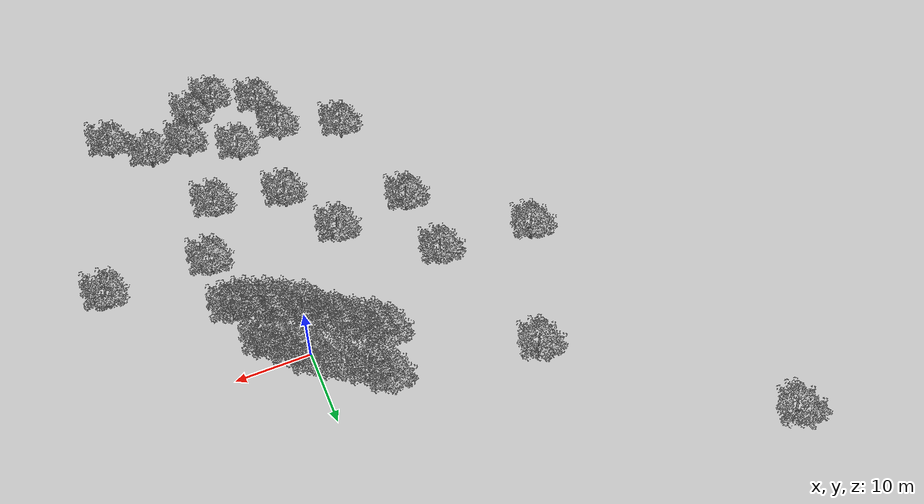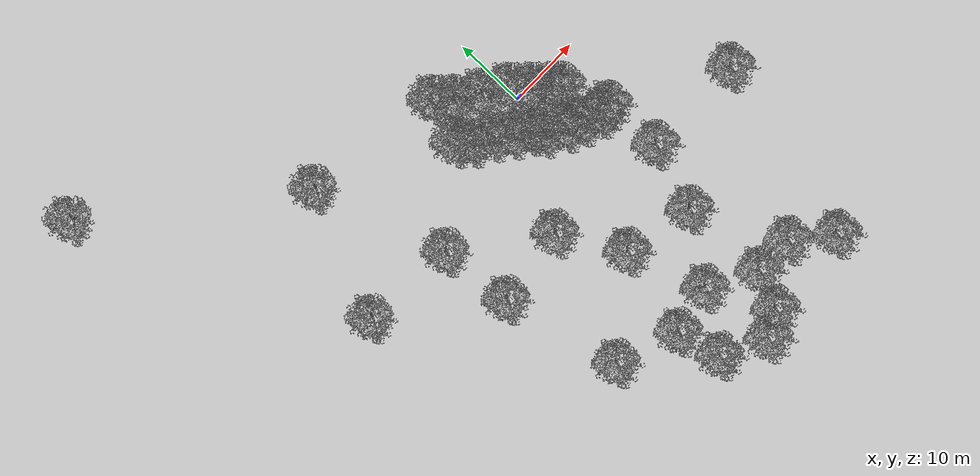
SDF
<gazebo version="1.2">
 <world name="default">
  <plugin name="carina_world_plugin" filename="libcarina_world_plugin.so"/>
  <physics type="bullet"><gravity>0 0 -9.8</gravity><bullet><dt>0.001</dt></bullet></physics>
  <scene>
   <ambient>0.0 0.0 0.0 1.0</ambient>
   <background>0.7 0.7 0.7 1.0</background>
   <sky>
    <time>12</time>
    <sunrise>5</sunrise>
    <sunset>19</sunset>
    <clouds>
     <speed>0.02</speed>
     <direction>0</direction>
     <humidity>0.8</humidity>
     <mean_size>1</mean_size>
     <ambient>0.5 0.5 0.5 1.0</ambient>
    </clouds>
   </sky>
   <shadows>true</shadows>
   <grid>false</grid>
  </scene>
  <light name="sun" type="directional">
   <pose>0.0 0.0 20.0 0.0 0.0 0.0</pose>
   <diffuse>0.85 0.85 0.85 1.0</diffuse>
   <specular>0.15 0.15 0.15 1.0</specular>
   <attenuation>
    <range>1000.0</range>
    <constant>0.9</constant>
    <linear>0.01</linear>
    <quadratic>0.001</quadratic>
   </attenuation>
   <direction>-0.5 0.5 -1.0</direction>
  </light>
  <model name="finihed">
   <pose>-10.000000 2.000000 0.000000 0.000000 -0.000000 0.000000</pose>
   <static>1</static>
   <link name="link">
    <inertial>
     <mass>10.000000</mass>
     <inertia>
      <ixx>0.001000</ixx>
      <ixy>0.000000</ixy>
      <ixz>0.000000</ixz>
      <iyy>0.001000</iyy>
      <iyz>0.000000</iyz>
      <izz>0.001000</izz>
     </inertia>
    </inertial>
    <collision name="collision">
     <geometry><cylinder><radius>0.150000</radius><length>5.000000</length></cylinder></geometry>
    </collision>
    <visual name="visual">
     <geometry>
      <mesh><uri>model://finihed/meshes/finihed.dae</uri><scale>1.000000 1.000000 1.000000</scale></mesh>
     </geometry>
    </visual>
    <velocity_decay><linear>0.000000</linear><angular>0.000000</angular></velocity_decay>
   </link>
  </model>
  <include>
   <name>tree_1</name>
   <uri>model://finihed</uri>
   <pose>-8.457250 0.462320 0.000000 0.000000 -0.000000 0.000000</pose>
  </include>
  <model name="tree_2">
   <include>
    <uri>model://finihed</uri>
    <pose>-6.000000 -1.000000 0.000000 0.000000 -0.000000 0.000000</pose>
   </include>
  </model>
  <model name="tree_3">
   <include>
    <uri>model://finihed</uri>
    <pose>-4.000000 -2.574660 0.000000 0.000000 -0.000000 0.000000</pose>
   </include>
  </model>
  <model name="finihed_3">
   <include>
    <uri>model://finihed</uri>
    <pose>-2.000000 -4.000000 0.000000 0.000000 -0.000000 0.000000</pose>
   </include>
  </model>
  <model name="finihed_4">
   <include>
    <uri>model://finihed</uri>
    <pose>-1.000000 -5.463300 0.000000 0.000000 -0.000000 0.000000</pose>
   </include>
  </model>
  <model name="finihed_5">
   <include>
    <uri>model://finihed</uri>
    <pose>1.487640 -7.000000 0.000000 0.000000 -0.000000 0.000000</pose>
   </include>
  </model>
  <model name="finihed_6">
   <include>
    <uri>model://finihed</uri>
    <pose>-8.000000 8.000000 0.000000 0.000000 -0.000000 0.000000</pose>
   </include>
  </model>
  <model name="finihed_7">
   <include>
    <uri>model://finihed</uri>
    <pose>-6.000000 6.000000 0.000000 0.000000 -0.000000 0.000000</pose>
   </include>
  </model>
  <model name="finihed_8">
   <include>
    <uri>model://finihed</uri>
    <pose>-3.000000 4.000000 0.000000 0.000000 -0.000000 0.000000</pose>
   </include>
  </model>
  <model name="finihed_9">
   <include>
    <uri>model://finihed</uri>
    <pose>0.000000 2.000000 0.000000 0.000000 -0.000000 0.000000</pose>
   </include>
  </model>
  <model name="finihed_10">
   <include>
    <uri>model://finihed</uri>
    <pose>2.000000 0.000000 0.000000 0.000000 -0.000000 0.000000</pose>
   </include>
  </model>
  <model name="finihed_11">
   <include>
    <uri>model://finihed</uri>
    <pose>4.000000 -2.000000 0.000000 0.000000 -0.000000 0.000000</pose>
   </include>
  </model>
  <model name="finihed_12">
   <include>
    <uri>model://finihed</uri>
    <pose>5.000000 -3.000000 0.000000 0.000000 -0.000000 0.000000</pose>
   </include>
  </model>
  <model name="finihed_13">
   <include>
    <uri>model://finihed</uri>
    <pose>3.559530 -8.000000 0.000000 0.000000 -0.000000 0.000000</pose>
   </include>
  </model>
  <model name="finihed_14">
   <include>
    <uri>model://finihed</uri>
    <pose>6.000000 -9.000000 0.000000 0.000000 -0.000000 0.000000</pose>
   </include>
  </model>
  <model name="finihed_15">
   <include>
    <uri>model://finihed</uri>
    <pose>7.459510 -9.000000 0.000000 0.000000 -0.000000 0.000000</pose>
   </include>
  </model>
  <model name="finihed_0">
   <include>
    <uri>model://finihed</uri>
    <pose>-9.406170 -15.582100 0.000000 0.000000 0.000000 0.000000</pose>
   </include>
  </model>
  <model name="finihed_1">
   <include>
    <uri>model://finihed</uri>
    <pose>5.000000 -26.000000 0.000000 0.000000 0.000000 0.000000</pose>
   </include>
  </model>
  <model name="finihed_2">
   <include>
    <uri>model://finihed</uri>
    <pose>-4.563540 -24.000000 0.000000 0.000000 0.000000 0.000000</pose>
   </include>
  </model>
  <model name="finihed_16">
   <include>
    <uri>model://finihed</uri>
    <pose>-52.000000 31.000000 0.000000 0.000000 0.000000 0.000000</pose>
   </include>
  </model>
  <model name="finihed_17">
   <include>
    <uri>model://finihed</uri>
    <pose>-34.000000 -6.000000 0.000000 0.000000 0.000000 0.000000</pose>
   </include>
  </model>
  <model name="finihed_18">
   <include>
    <uri>model://finihed</uri>
    <pose>22.000000 -17.000000 0.000000 0.000000 0.000000 0.000000</pose>
   </include>
  </model>
  <model name="finihed_19">
   <include>
    <uri>model://finihed</uri>
    <pose>8.000000 -17.000000 0.000000 0.000000 0.000000 0.000000</pose>
   </include>
  </model>
  <model name="finihed_20">
   <include>
    <uri>model://finihed</uri>
    <pose>-27.000000 11.000000 0.000000 0.000000 0.000000 0.000000</pose>
   </include>
  </model>
  <model name="finihed_21">
   <include>
    <uri>model://finihed</uri>
    <pose>-21.000000 -7.000000 0.000000 0.000000 0.000000 0.000000</pose>
   </include>
  </model>
  <model name="finihed_22">
   <include>
    <uri>model://finihed</uri>
    <pose>-20.000000 -17.000000 0.000000 0.000000 0.000000 0.000000</pose>
   </include>
  </model>
  <model name="finihed_23">
   <include>
    <uri>model://finihed</uri>
    <pose>-16.000000 -33.000000 0.000000 0.000000 0.000000 0.000000</pose>
   </include>
  </model>
  <model name="finihed_24">
   <include>
    <uri>model://finihed</uri>
    <pose>0.000000 -45.000000 0.000000 0.000000 0.000000 0.000000</pose>
   </include>
  </model>
  <model name="finihed_25">
   <include>
    <uri>model://finihed</uri>
    <pose>3.431760 -43.000000 0.000000 0.000000 0.000000 0.000000</pose>
   </include>
  </model>
  <model name="finihed_26">
   <include>
    <uri>model://finihed</uri>
    <pose>-6.000000 -42.000000 0.000000 0.000000 0.000000 0.000000</pose>
   </include>
  </model>
  <model name="finihed_27">
   <include>
    <uri>model://finihed</uri>
    <pose>-7.491620 -36.000000 0.000000 0.000000 0.000000 0.000000</pose>
   </include>
  </model>
  <model name="finihed_28">
   <include>
    <uri>model://finihed</uri>
    <pose>-1.000000 -34.532300 0.000000 0.000000 0.000000 0.000000</pose>
   </include>
  </model>
  <model name="finihed_29">
   <include>
    <uri>model://finihed</uri>
    <pose>5.553360 -38.000000 0.000000 0.000000 0.000000 0.000000</pose>
   </include>
  </model>
  <model name="finihed_30">
   <include>
    <uri>model://finihed</uri>
    <pose>11.000000 -38.000000 0.000000 0.000000 0.000000 0.000000</pose>
   </include>
  </model>
  <model name="finihed_31">
   <include>
    <uri>model://finihed</uri>
    <pose>16.000000 -42.000000 0.000000 0.000000 0.000000 0.000000</pose>
   </include>
  </model>
 </world>
</gazebo>

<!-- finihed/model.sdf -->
<sdf version="1.4">
	<model name="finihed">
		<pose>0 0 0 0 0 0</pose>
		<static>true</static>
		<allow_auto_disable>false</allow_auto_disable>
		<link name="link">
			<pose>0 0 0 0 0 0</pose>
			<inertial>
				<mass>10</mass>
				<pose>0 0 0 0 0 0</pose>
				<inertia>
					<ixx>0.001</ixx>
					<ixy>0</ixy>
					<ixz>0</ixz>
					<iyy>0.001</iyy>
					<iyz>0</iyz>
					<izz>0.001</izz>
				</inertia>
			</inertial>

			<collision name="collision">
				<laser_retro>0.5</laser_retro>
				<geometry>
					<pose>0 -0.05 0 0 0 0</pose>
					<cylinder>
						<radius>0.15</radius>
						<length>2.001</length>
					</cylinder>
				</geometry>
			</collision>

			<visual name="visual">
				<geometry>
					<mesh>
						<uri>model://finihed/meshes/finihed.dae</uri>
						<scale>1 1 1</scale>
					</mesh>
				</geometry>
			</visual>
			<self_collide>false</self_collide>
			<kinematic>false</kinematic>
			<gravity>true</gravity>
		</link>
	</model>
</sdf>
